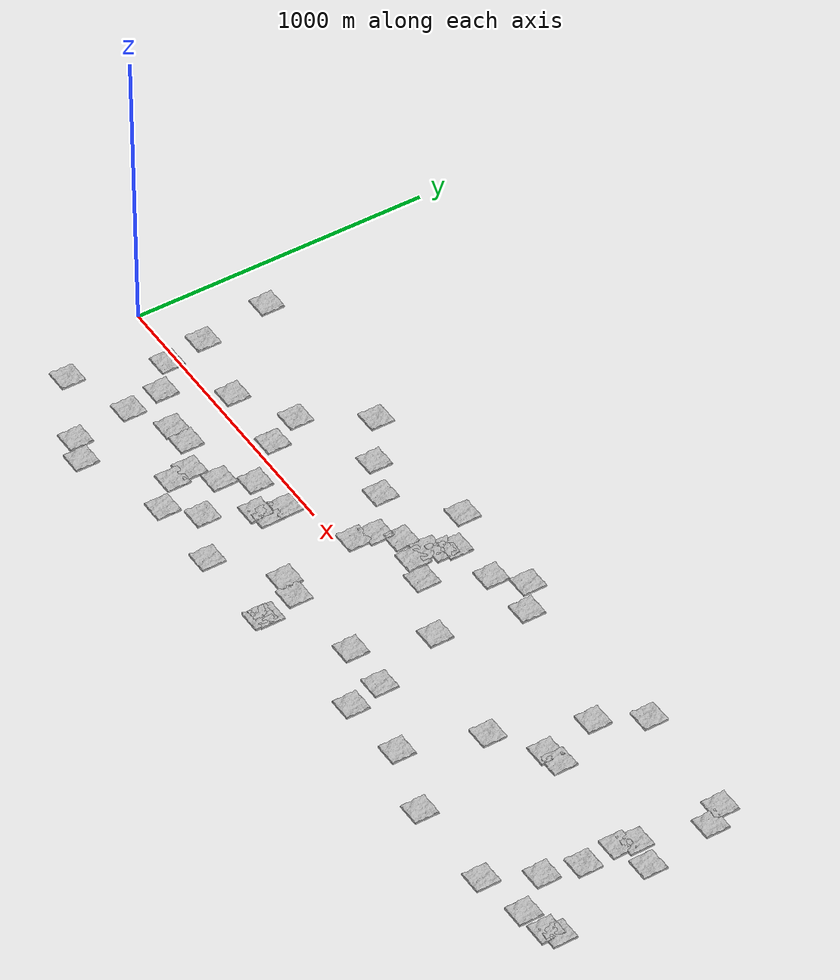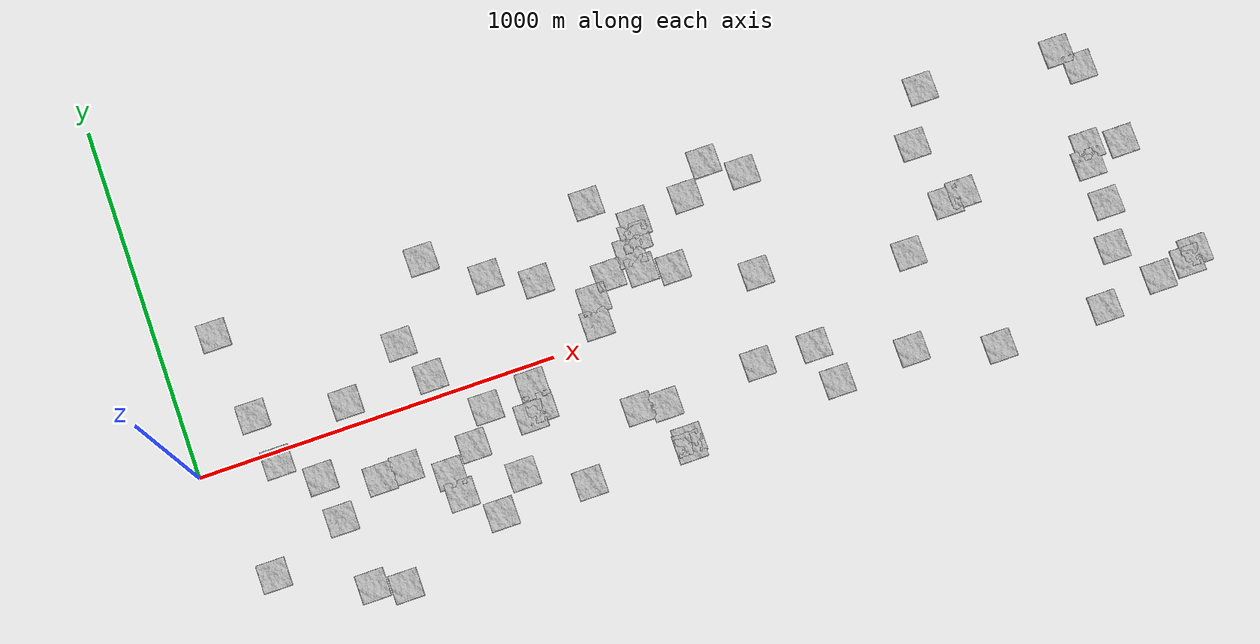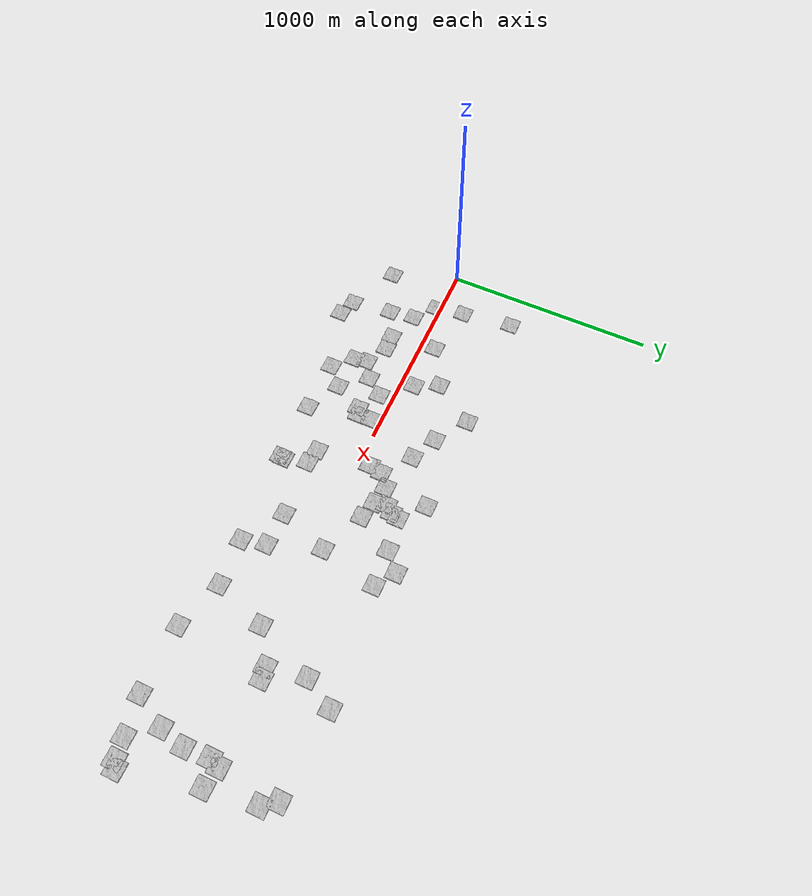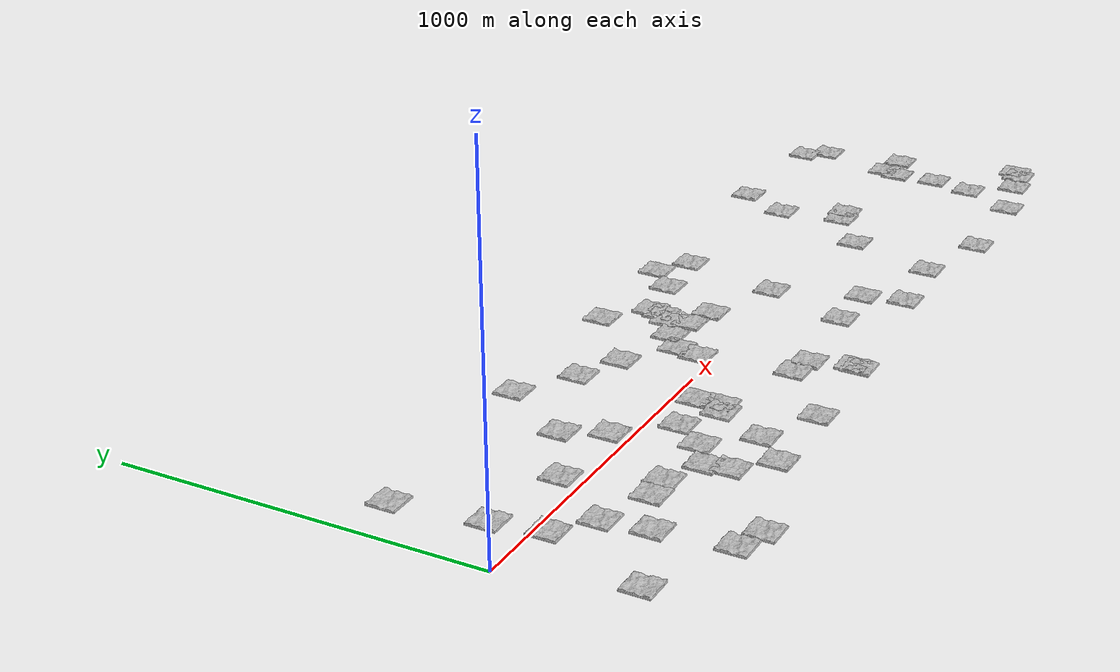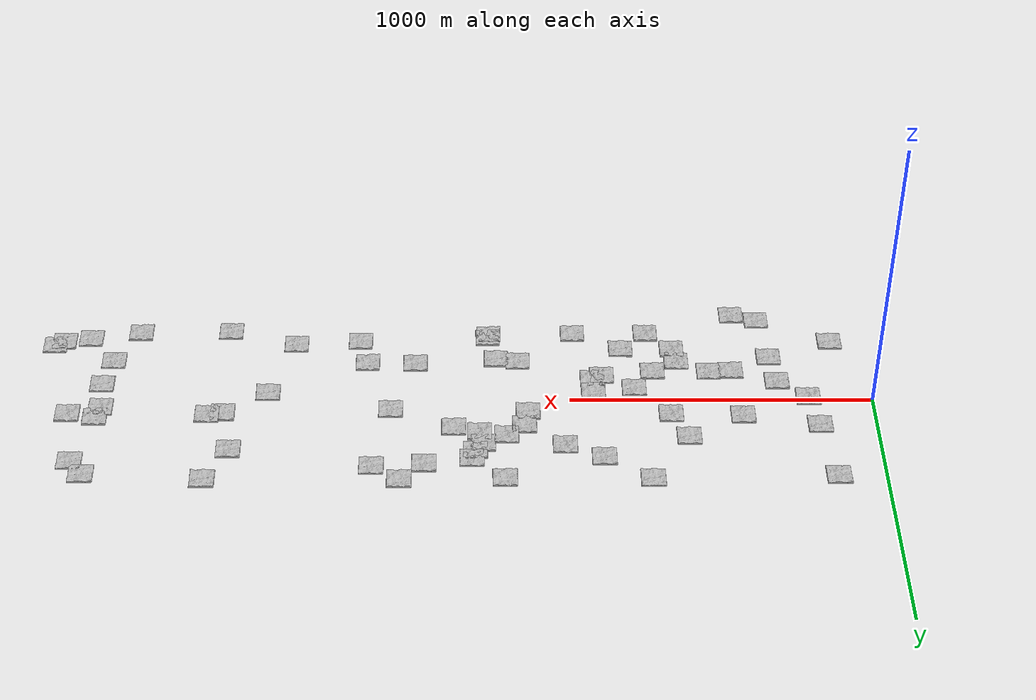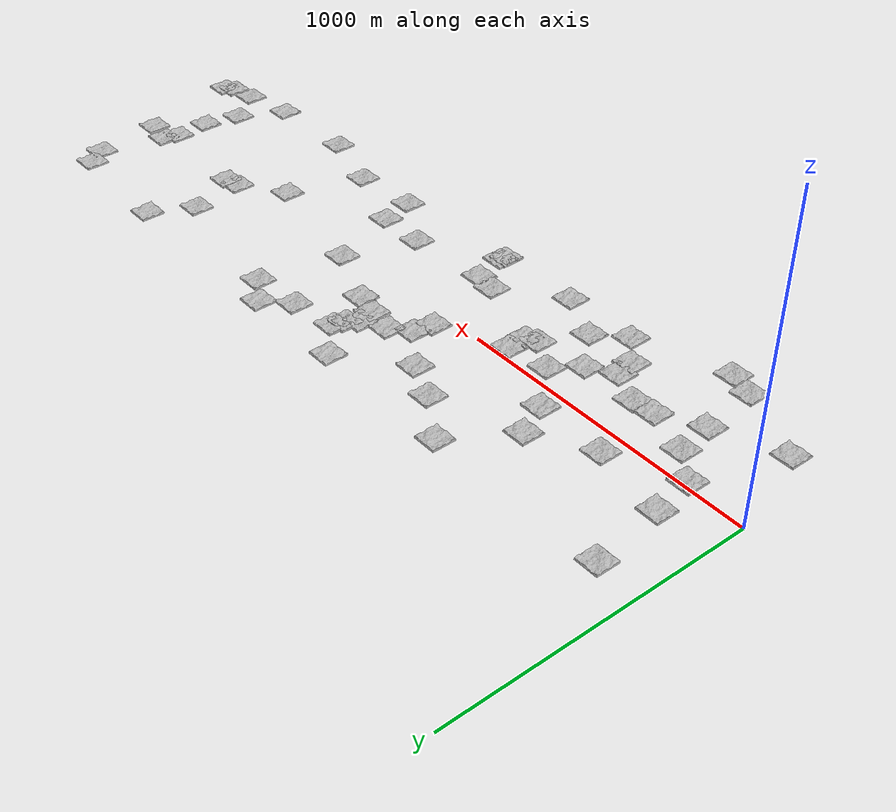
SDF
<sdf version="1.6">
 <world name="default">
  <include><uri>model://sun</uri></include>
  <model name="hill2_27">
   <include><uri>model://hill2</uri><pose>251.03 13.77 -6 0 0 4.7124</pose></include>
  </model>
  <model name="hill2_28">
   <include><uri>model://hill2</uri><pose>1178.45 9.96 -6 0 0 3.1416</pose></include>
  </model>
  <model name="hill2_29">
   <include><uri>model://hill2</uri><pose>113.51 397.84 -6 0 0 0.0</pose></include>
  </model>
  <model name="hill2_30">
   <include><uri>model://hill2</uri><pose>2520.65 40.67 -6 0 0 1.5708</pose></include>
  </model>
  <model name="hill2_31">
   <include><uri>model://hill2</uri><pose>850.34 -89.99 -6 0 0 0.0</pose></include>
  </model>
  <model name="hill2_32">
   <include><uri>model://hill2</uri><pose>678.51 -193.25 -6 0 0 1.5708</pose></include>
  </model>
  <model name="hill2_33">
   <include><uri>model://hill2</uri><pose>2693.79 101.45 -6 0 0 4.7124</pose></include>
  </model>
  <model name="hill2_34">
   <include><uri>model://hill2</uri><pose>309.01 -382.27 -6 0 0 0.0</pose></include>
  </model>
  <model name="hill2_35">
   <include><uri>model://hill2</uri><pose>415.59 -196.7 -6 0 0 1.5708</pose></include>
  </model>
  <model name="hill2_36">
   <include><uri>model://hill2</uri><pose>1284.91 320.24 -6 0 0 0.0</pose></include>
  </model>
  <model name="hill2_37">
   <include><uri>model://hill2</uri><pose>881.48 -154.3 -6 0 0 1.5708</pose></include>
  </model>
  <model name="hill2_38">
   <include><uri>model://hill2</uri><pose>2587.45 70.94 -6 0 0 4.7124</pose></include>
  </model>
  <model name="hill2_39">
   <include><uri>model://hill2</uri><pose>656.76 131.63 -6 0 0 3.1416</pose></include>
  </model>
  <model name="hill2_40">
   <include><uri>model://hill2</uri><pose>1342.82 89.29 -6 0 0 1.5708</pose></include>
  </model>
  <model name="hill2_41">
   <include><uri>model://hill2</uri><pose>392.28 -411.17 -6 0 0 0.0</pose></include>
  </model>
  <model name="hill2_42">
   <include><uri>model://hill2</uri><pose>744.79 -28.17 -6 0 0 0.0</pose></include>
  </model>
  <model name="hill2_43">
   <include><uri>model://hill2</uri><pose>2692.78 -327.6 -6 0 0 1.5708</pose></include>
  </model>
  <model name="hill2_44">
   <include><uri>model://hill2</uri><pose>1224.95 -384.98 -6 0 0 1.5708</pose></include>
  </model>
  <model name="hill2_45"><include><uri>model://hill2</uri><pose>2103.87 98.5 -6 0 0 0.0</pose></include></model>
  <model name="hill2_46">
   <include><uri>model://hill2</uri><pose>2225.46 337.86 -6 0 0 3.1416</pose></include>
  </model>
  <model name="hill2_47">
   <include><uri>model://hill2</uri><pose>1062.72 253.95 -6 0 0 4.7124</pose></include>
  </model>
  <model name="hill2_48">
   <include><uri>model://hill2</uri><pose>2576.19 -282.63 -6 0 0 0.0</pose></include>
  </model>
  <model name="hill2_49">
   <include><uri>model://hill2</uri><pose>2593.02 -126.83 -6 0 0 3.1416</pose></include>
  </model>
  <model name="hill2_50">
   <include><uri>model://hill2</uri><pose>2536.03 396.2 -6 0 0 0.0</pose></include>
  </model>
  <model name="hill2_51">
   <include><uri>model://hill2</uri><pose>1439.79 344.78 -6 0 0 0.0</pose></include>
  </model>
  <model name="hill2_52">
   <include><uri>model://hill2</uri><pose>1631.48 -236.16 -6 0 0 1.5708</pose></include>
  </model>
  <model name="hill2_53">
   <include><uri>model://hill2</uri><pose>1609.16 357.31 -6 0 0 0.0</pose></include>
  </model>
  <model name="hill2_54">
   <include><uri>model://hill2</uri><pose>1340.24 191.4 -6 0 0 4.7124</pose></include>
  </model>
  <model name="hill2_55">
   <include><uri>model://hill2</uri><pose>772.91 -313.7 -6 0 0 4.7124</pose></include>
  </model>
  <model name="hill2_56">
   <include><uri>model://hill2</uri><pose>1252.11 204.97 -6 0 0 4.7124</pose></include>
  </model>
  <model name="hill2_57">
   <include><uri>model://hill2</uri><pose>1178.6 333.53 -6 0 0 1.5708</pose></include>
  </model>
  <model name="hill2_58">
   <include><uri>model://hill2</uri><pose>2038.18 -83.74 -6 0 0 3.1416</pose></include>
  </model>
  <model name="hill2_59">
   <include><uri>model://hill2</uri><pose>940.31 -390.36 -6 0 0 1.5708</pose></include>
  </model>
  <model name="hill2_60">
   <include><uri>model://hill2</uri><pose>1659.48 -268.81 -6 0 0 0.0</pose></include>
  </model>
  <model name="hill2_61">
   <include><uri>model://hill2</uri><pose>393.73 107.56 -6 0 0 0.0</pose></include>
  </model>
  <model name="hill2_62">
   <include><uri>model://hill2</uri><pose>1246.7 168.02 -6 0 0 1.5708</pose></include>
  </model>
  <model name="hill2_63">
   <include><uri>model://hill2</uri><pose>267.32 -63.74 -6 0 0 0.0</pose></include>
  </model>
  <model name="hill2_64">
   <include><uri>model://hill2</uri><pose>1228.47 -367.89 -6 0 0 1.5708</pose></include>
  </model>
  <model name="hill2_65">
   <include><uri>model://hill2</uri><pose>709.95 101.04 -6 0 0 4.7124</pose></include>
  </model>
  <model name="hill2_66">
   <include><uri>model://hill2</uri><pose>1111.59 77.31 -6 0 0 1.5708</pose></include>
  </model>
  <model name="hill2_67">
   <include><uri>model://hill2</uri><pose>1129.87 -163.98 -6 0 0 0.0</pose></include>
  </model>
  <model name="hill2_68">
   <include><uri>model://hill2</uri><pose>1551.48 81.75 -6 0 0 0.0</pose></include>
  </model>
  <model name="hill2_69">
   <include><uri>model://hill2</uri><pose>1273.96 283.0 -6 0 0 0.0</pose></include>
  </model>
  <model name="hill2_70">
   <include><uri>model://hill2</uri><pose>1876.63 -252.55 -6 0 0 0.0</pose></include>
  </model>
  <model name="hill2_71">
   <include><uri>model://hill2</uri><pose>2407.73 -394.21 -6 0 0 1.5708</pose></include>
  </model>
  <model name="hill2_72">
   <include><uri>model://hill2</uri><pose>859.7 -311.17 -6 0 0 3.1416</pose></include>
  </model>
  <model name="hill2_73">
   <include><uri>model://hill2</uri><pose>2665.15 -267.46 -6 0 0 0.0</pose></include>
  </model>
  <model name="hill2_74">
   <include><uri>model://hill2</uri><pose>2579.65 334.84 -6 0 0 0.0</pose></include>
  </model>
  <model name="hill2_75">
   <include><uri>model://hill2</uri><pose>879.79 -89.39 -6 0 0 1.5708</pose></include>
  </model>
  <model name="hill2_76">
   <include><uri>model://hill2</uri><pose>1280.95 -257.68 -6 0 0 3.1416</pose></include>
  </model>
  <model name="hill2_77">
   <include><uri>model://hill2</uri><pose>688.8 -229.39 -6 0 0 4.7124</pose></include>
  </model>
  <model name="hill2_78">
   <include><uri>model://hill2</uri><pose>1472.73 -153.36 -6 0 0 0.0</pose></include>
  </model>
  <model name="hill2_79">
   <include><uri>model://hill2</uri><pose>2234.88 106.16 -6 0 0 4.7124</pose></include>
  </model>
  <model name="hill2_80">
   <include><uri>model://hill2</uri><pose>2486.89 -165.31 -6 0 0 0.0</pose></include>
  </model>
  <model name="hill2_81">
   <include><uri>model://hill2</uri><pose>676.97 -165.44 -6 0 0 4.7124</pose></include>
  </model>
  <model name="hill2_82">
   <include><uri>model://hill2</uri><pose>2102.65 -320.83 -6 0 0 0.0</pose></include>
  </model>
  <model name="hill2_83">
   <include><uri>model://hill2</uri><pose>785.75 332.29 -6 0 0 3.1416</pose></include>
  </model>
  <model name="hill2_84">
   <include><uri>model://hill2</uri><pose>858.04 311.76 -6 0 0 0.0</pose></include>
  </model>
  <model name="hill2_85">
   <include><uri>model://hill2</uri><pose>2073.43 277.74 -6 0 0 0.0</pose></include>
  </model>
  <model name="hill2_86">
   <include><uri>model://hill2</uri><pose>491.53 -111.97 -6 0 0 0.0</pose></include>
  </model>
  <model name="hill2_87">
   <include><uri>model://hill2</uri><pose>363.36 -267.51 -6 0 0 3.1416</pose></include>
  </model>
  <model name="hill2_88">
   <include><uri>model://hill2</uri><pose>1517.78 339.31 -6 0 0 1.5708</pose></include>
  </model>
  <model name="hill2_89">
   <include><uri>model://hill2</uri><pose>224.89 73.4 -6 0 0 3.1416</pose></include>
  </model>
  <model name="hill2_90">
   <include><uri>model://hill2</uri><pose>148.45 -351.63 -6 0 0 3.1416</pose></include>
  </model>
 </world>
</sdf>
